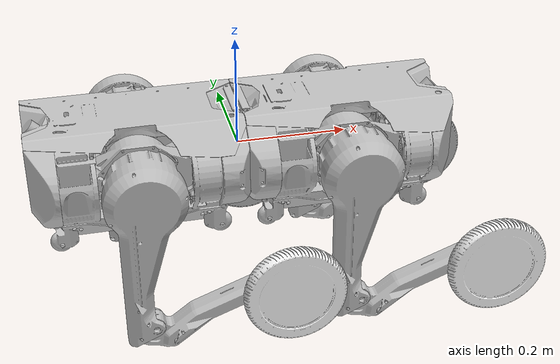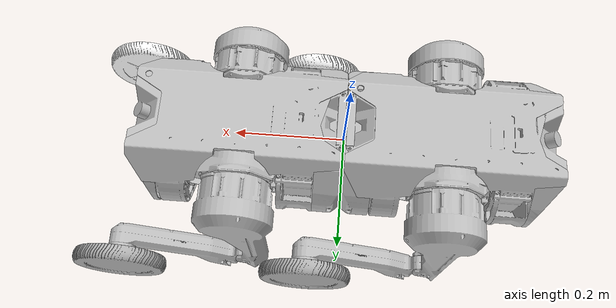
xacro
<?xml version="1.0"?>

<robot name="d1_new_description"
    xmlns:xacro="http://www.ros.org/wiki/xacro">
    <mujoco>
        <compiler fusestatic="false"/>
    </mujoco>

    <xacro:arg name="hw_env" default="none" />

    <xacro:include filename="$(find d1_new_description)/xacro/ros2control.xacro"/>
    <xacro:ros2control hw_env="$(arg hw_env)" />

    <xacro:include filename="$(find d1h_description)/xacro/materials.xacro"/>
    <xacro:include filename="$(find d1h_description)/xacro/single_robot.xacro"/>

    <link name="base_link">
        <visual>
            <origin rpy="0 0 0" xyz="0 0 0"/>
            <geometry>
                <box size="0.001 0.001 0.001"/>
            </geometry>
        </visual>
        <inertial>
            <mass value="0.001"/>
            <origin rpy="0 0 0" xyz="0 0 0"/>
            <inertia ixx="0.0001" ixy="0" ixz="0" iyy="0.0001" iyz="0" izz="0.0001"/>
        </inertial>
    </link>
    <link name="imu_link">
        <inertial>
            <mass value="0.001"/>
            <origin rpy="0 0 0" xyz="0 0 0"/>
            <inertia ixx="0.0001" ixy="0" ixz="0" iyy="0.0001" iyz="0" izz="0.0001"/>
        </inertial>
        <visual>
            <origin rpy="0 0 0" xyz="0 0 0"/>
            <geometry>
                <box size="0.001 0.001 0.001"/>
            </geometry>
            <material name="red"/>
        </visual>
        <collision>
            <origin rpy="0 0 0" xyz="0 0 0"/>
            <geometry>
                <box size=".001 .001 .001"/>
            </geometry>
        </collision>
    </link>
    <joint name="imu_joint" type="fixed">
        <parent link="base_link"/>
        <child link="imu_link"/>
        <origin rpy="0 0 0" xyz="0 0 0"/>
    </joint>

    <xacro:single_robot name="F" x_offset="0.1875"/>
    <xacro:single_robot name="R" x_offset="-0.1875"/>
</robot>

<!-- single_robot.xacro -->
<robot name="single_robot"
    xmlns:xacro="http://www.ros.org/wiki/xacro">
    <xacro:macro name="single_robot" params="name x_offset">
        <!-- Base link -->
        <link name="${name}_base_link">
            <inertial>
                <origin xyz="0.04005271 0.00019692 -0.02084955" rpy="0 0 0" />
                <mass value="8.44614222" />
                <inertia ixx="0.07256618" ixy="0.00023603" ixz="-0.00688763" iyy="0.11587953" iyz="3.472e-05" izz="0.11697399"/>
            </inertial>
            <visual>
                <origin xyz="0 0 0" rpy="0 0 0" />
                <geometry>
                    <mesh filename="package://d1h_description/meshes/base_link.STL" />
                </geometry>
                <material name="">
                    <color rgba="0.75294 0.75294 0.75294 1" />
                </material>
            </visual>
            <collision>
                <origin xyz="0 0 0" rpy="0 0 0" />
                <geometry>
                    <box size="0.275 0.15 0.175"/>
                </geometry>
            </collision>
            <collision>
                <origin xyz="0 0 -0.12" rpy="0 0 0" />
                <geometry>
                    <box size="0.31 0.12 0.06"/>
                </geometry>
            </collision>
        </link>
        <joint name="${name}_base_joint" type="fixed">
            <origin xyz="${x_offset} 0 0" rpy="0 0 0" />
            <parent link="base_link" />
            <child link="${name}_base_link" />
        </joint>

        <!-- Funtion link -->
        <link name="${name}_funtion_link">
            <inertial>
                <origin xyz="0.01321944 0.0 0.00563897" rpy="0 0 0" />
                <mass value="0.67772" />
                <inertia ixx="0.0046602" ixy="-4.1631E-09" ixz="4.51E-05" iyy="0.0017478" iyz="8e-08" izz="0.0031524" />
            </inertial>
            <visual>
                <origin xyz="0 0 0" rpy="0 0 0" />
                <geometry>
                    <mesh filename="package://d1h_description/meshes/funtion_Link.STL" />
                </geometry>
                <material name="">
                    <color rgba="0.75294 0.75294 0.75294 1" />
                </material>
            </visual>
            <collision>
                <origin xyz="0.008 0 0" rpy="0 0 0" />
                <geometry>
                    <box size="0.0495 0.15 0.175"/>
                </geometry>
            </collision>
        </link>
        <joint name="${name}_funtion_joint" type="fixed">
            <xacro:if value="${(name == 'F')}">
                <origin xyz="0.1545 0 0" rpy="0 0 0" />
            </xacro:if>
            <xacro:if value="${(name == 'R')}">
                <origin xyz="-0.1545 0 0" rpy="0 0 3.14159" />
            </xacro:if>
            <parent link="${name}_base_link" />
            <child link="${name}_funtion_link" />
            <axis xyz="0 0 0" />
        </joint>

        <!-- Docking link -->
        <link name="${name}_docking_link">
            <inertial>
                <origin xyz="0.01527894 0.00855247 0.00284739" rpy="0 0 0" />
                <mass value="2.20153411" />
                <inertia ixx="0.01876158" ixy="0.00036494" ixz="6.869e-05" iyy="0.00631988" iyz="0.0001511" izz="0.01358894"/>
            </inertial>
            <visual>
                <origin xyz="0 0 0" rpy="0 0 0" />
                <geometry>
                    <mesh filename="package://d1h_description/meshes/docking_Link.STL" />
                </geometry>
                <material name="">
                    <color rgba="0.75294 0.75294 0.75294 1" />
                </material>
            </visual>
            <collision>
                <origin xyz="0.0065 0 0" rpy="0 0 0" />
                <geometry>
                    <box size="0.0851 0.15 0.175"/>
                </geometry>
            </collision>
        </link>
        <joint name="${name}_docking_joint" type="fixed">
            <xacro:if value="${(name == 'F')}">
                <origin xyz="-0.187 0 0" rpy="0 0 0" />
            </xacro:if>
            <xacro:if value="${(name == 'R')}">
                <origin xyz="0.187 0 0" rpy="0 0 3.14159" />
            </xacro:if>
            <parent link="${name}_base_link" />
            <child link="${name}_docking_link" />
            <axis xyz="0 0 0" />
        </joint>

        <!-- Left hip link -->
        <link name="${name}L_hip">
            <inertial>
                <origin xyz="-0.01814352 -7.96e-06 -0.09365134" rpy="0 0 0" />
                <mass value="1.69464273" />
                <inertia ixx="0.00379266" ixy="-1.1e-07" ixz="-2.452e-05" iyy="0.00276068" iyz="3.09e-06" izz="0.00214485" />
            </inertial>
            <visual>
                <origin xyz="0 0 0" rpy="0 0 0" />
                <geometry>
                    <mesh filename="package://d1h_description/meshes/L_hip.STL" />
                </geometry>
                <material name="">
                    <color rgba="0.75294 0.75294 0.75294 1" />
                </material>
            </visual>
        </link>
        <joint name="${name}L_hip_joint" type="revolute">
            <origin xyz="0.0945 0.0775 0" rpy="1.5708 0 1.5708" />
            <parent link="${name}_base_link" />
            <child link="${name}L_hip" />
            <axis xyz="0 0 1" />
            <dynamics damping="0" friction="0"/>
            <limit effort="80" lower="-0.7853981633974483" upper="0.7853981633974483" velocity="20"/>
        </joint>

        <!-- Left thigh link -->
        <link name="${name}L_thigh">
            <inertial>
                <origin xyz="0.02895091 0.00356333 -0.02811556" rpy="0 0 0" />
                <mass value="2.55232244" />
                <inertia ixx="0.00426053" ixy="-0.00133627" ixz="-0.00212533" iyy="0.01734276" iyz="-0.00029985" izz="0.01796394" />
            </inertial>
            <visual>
                <origin xyz="0 0 0" rpy="0 0 0" />
                <geometry>
                    <mesh filename="package://d1h_description/meshes/L_thigh.STL" />
                </geometry>
                <material name="">
                    <color rgba="0.75294 0.75294 0.75294 1" />
                </material>
            </visual>
            <collision>
                <origin xyz="0.06 0.02 0" rpy="0 0 0.2617993877991494" />
                <geometry>
                    <box size="0.26 0.09 0.05"/>
                </geometry>
            </collision>
        </link>
        <joint name="${name}L_thigh_joint" type="revolute">
            <origin xyz="0.0905 0 -0.0945" rpy="-1.5708 0 -1.5704" />
            <parent link="${name}L_hip" />
            <child link="${name}L_thigh" />
            <axis xyz="0 0 1" />
            <dynamics damping="0" friction="0"/>
            <limit effort="80" lower="-1.8325957145940461" upper="3.4033920413889422" velocity="20"/>
        </joint>

        <!-- Left knee link -->
        <link name="${name}L_calf">
            <inertial>
                <origin xyz="0.12506267 0.00606587 0.00312587" rpy="0 0 0" />
                <mass value="0.46345045" />
                <inertia ixx="0.00023821" ixy="0.00034272" ixz="-0.00014416" iyy="0.00488539" iyz="3.83e-06" izz="0.00493944" />
            </inertial>
            <visual>
                <origin xyz="0 0 0" rpy="0 0 0" />
                <geometry>
                    <mesh filename="package://d1h_description/meshes/L_calf.STL" />
                </geometry>
                <material name="">
                    <color rgba="0.75294 0.75294 0.75294 1" />
                </material>
            </visual>
            <collision>
                <origin xyz="0.15 0.01 0" rpy="0 0 -0.08" />
                <geometry>
                    <box size="0.24 0.04 0.05"/>
                </geometry>
            </collision>
        </link>
        <joint name="${name}L_calf_joint" type="revolute">
            <origin xyz="0.25 0 0" rpy="-0.0 0.0 0.0" />
            <parent link="${name}L_thigh" />
            <child link="${name}L_calf" />
            <axis xyz="0 0 1" />
            <dynamics damping="0" friction="0"/>
            <limit effort="80" lower="-2.775" upper="-0.855" velocity="20"/>
        </joint>

        <!-- Left wheel link -->
        <link name="${name}L_foot">
            <inertial>
                <origin xyz="-2.82e-06 0.0 -0.00091845" rpy="0 0 0" />
                <mass value="1.6631" />
                <inertia ixx="0.00397025" ixy="2.224e-05" ixz="2.1e-07" iyy="0.00395149" iyz="2e-07" izz="0.00760863" />
            </inertial>
            <visual>
                <origin xyz="0 0 0" rpy="0 0 0" />
                <geometry>
                    <mesh filename="package://d1h_description/meshes/L_foot.STL" />
                </geometry>
                <material name="">
                    <color rgba="0.698039215686274 0.698039215686274 0.698039215686274 1" />
                </material>
            </visual>
            <collision>
                <origin xyz="0 0 0.0" rpy="0 0 0" />
                <geometry>
                    <cylinder length="0.04" radius="0.087"/>
                </geometry>
            </collision>
        </link>
        <joint name="${name}L_foot_joint" type="revolute">
            <origin xyz="0.25 0 0.052166" rpy="0 0 0" />
            <parent link="${name}L_calf" />
            <child link="${name}L_foot" />
            <axis xyz="0 0 1" />
            <dynamics damping="0" friction="0"/>
            <limit effort="12" lower="-1000000.0" upper="1000000.0" velocity="30.0"/>
        </joint>

        <!-- Right hip link -->
        <link name="${name}R_hip">
            <inertial>
                <origin xyz="0.01814352 -8e-06 -0.09365134" rpy="0 0 0" />
                <mass value="1.69464279" />
                <inertia ixx="0.00379266" ixy="1.1e-07" ixz="2.452e-05" iyy="0.00276068" iyz="3.09e-06" izz="0.00214485" />
            </inertial>
            <visual>
                <origin xyz="0 0 0" rpy="0 0 0" />
                <geometry>
                    <mesh filename="package://d1h_description/meshes/R_hip.STL" />
                </geometry>
                <material name="">
                    <color rgba="0.75294 0.75294 0.75294 1" />
                </material>
            </visual>
        </link>
        <joint name="${name}R_hip_joint" type="revolute">
            <origin xyz="0.0945 -0.0775 0" rpy="1.5708 0 1.5708" />
            <parent link="${name}_base_link" />
            <child link="${name}R_hip" />
            <axis xyz="0 0 1" />
            <dynamics damping="0" friction="0"/>
            <limit effort="80" lower="-0.7853981633974483" upper="0.7853981633974483" velocity="20"/>
        </joint>

        <!-- Right thigh link -->
        <link name="${name}R_thigh">
            <inertial>
                <origin xyz="0.0291816 0.00370278 0.02811568" rpy="0 0 0" />
                <mass value="2.55232278" />
                <inertia ixx="0.00427405" ixy="-0.00133225" ixz="0.00213801" iyy="0.01729241" iyz="0.00030751" izz="0.01792714" />
            </inertial>
            <visual>
                <origin xyz="0 0 0" rpy="0 0 0" />
                <geometry>
                    <mesh filename="package://d1h_description/meshes/R_thigh.STL" />
                </geometry>
                <material name="">
                    <color rgba="0.752941176470588 0.752941176470588 0.752941176470588 1" />
                </material>
            </visual>
            <collision>
                <origin xyz="0.06 0.02 0" rpy="0 0 0.2617993877991494" />
                <geometry>
                    <box size="0.26 0.09 0.05"/>
                </geometry>
            </collision>
        </link>
        <joint name="${name}R_thigh_joint" type="revolute">
            <origin xyz="-0.0905 0 -0.0945" rpy="-1.5708 0 -1.5712" />
            <parent link="${name}R_hip" />
            <child link="${name}R_thigh" />
            <axis xyz="0 0 1" />
            <dynamics damping="0" friction="0"/>
            <limit effort="80" lower="-1.8325957145940461" upper="3.4033920413889422" velocity="20"/>
        </joint>

        <!-- Right knee link -->
        <link name="${name}R_calf">
            <inertial>
                <origin xyz="0.12506359 0.00606606 -0.0031258" rpy="0 0 0" />
                <mass value="0.46345511" />
                <inertia ixx="0.00023821" ixy="0.00034271" ixz="0.00014415" iyy="0.00488543" iyz="-3.83e-06" izz="0.00493948" />
            </inertial>
            <visual>
                <origin xyz="0 0 0" rpy="0 0 0" />
                <geometry>
                    <mesh filename="package://d1h_description/meshes/R_calf.STL" />
                </geometry>
                <material name="">
                    <color rgba="0.752941176470588 0.752941176470588 0.752941176470588 1" />
                </material>
            </visual>
            <collision>
                <origin xyz="0.15 0.01 0" rpy="0 0 -0.08" />
                <geometry>
                    <box size="0.24 0.04 0.05"/>
                </geometry>
            </collision>
        </link>
        <joint name="${name}R_calf_joint" type="revolute">
            <origin xyz="0.25 0 0" rpy="0.0 0.0 0.0" />
            <parent link="${name}R_thigh" />
            <child link="${name}R_calf" />
            <axis xyz="0 0 1" />
            <dynamics damping="0" friction="0"/>
            <limit effort="80" lower="-2.775" upper="-0.855" velocity="20"/>
        </joint>

        <!-- Right wheel link -->
        <link name="${name}R_foot">
            <inertial>
                <origin xyz="-2.78e-06 0.0 0.00091859" rpy="0 0 0" />
                <mass value="1.6631" />
                <inertia ixx="0.00397018" ixy="2.222e-05" ixz="-2.1e-07" iyy="0.00395159" iyz="-2e-07" izz="0.00760867" />
            </inertial>
            <visual>
                <origin xyz="0 0 0" rpy="0 0 0" />
                <geometry>
                    <mesh filename="package://d1h_description/meshes/R_foot.STL" />
                </geometry>
                <material name="">
                    <color rgba="1 1 1 1" />
                </material>
            </visual>
            <collision>
                <origin xyz="0 0 -0.0" rpy="0 0 0" />
                <geometry>
                    <cylinder length="0.04" radius="0.087"/>
                </geometry>
            </collision>
        </link>
        <joint name="${name}R_foot_joint" type="revolute">
            <origin xyz="0.25 0 -0.052166" rpy="0 0 2.3965" />
            <parent link="${name}R_calf" />
            <child link="${name}R_foot" />
            <axis xyz="0 0 1" />
            <dynamics damping="0" friction="0"/>
            <limit effort="12" lower="-1000000.0" upper="1000000.0" velocity="30.0"/>
        </joint>

    </xacro:macro>
</robot>
